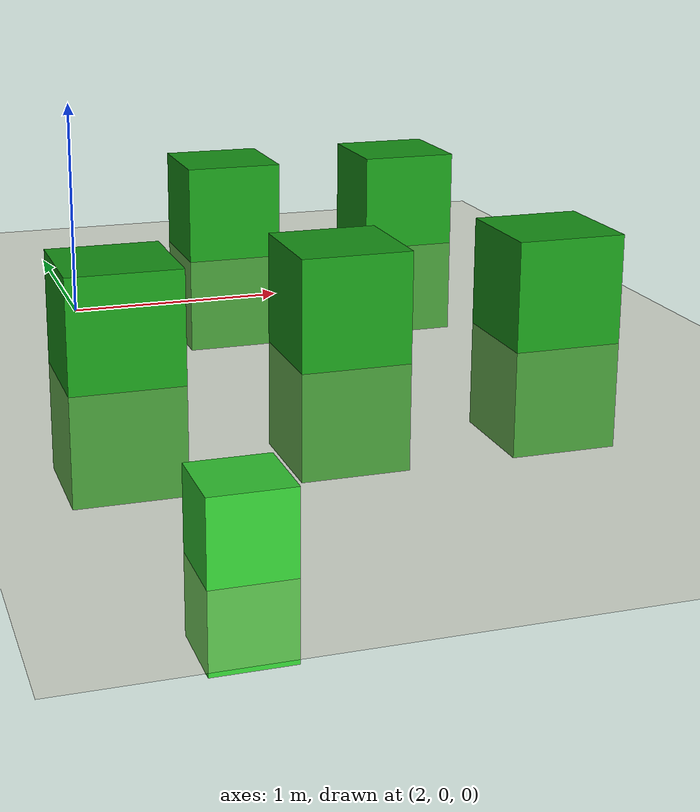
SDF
<?xml version="1.0" ?>
<sdf version="1.7">
  <world name="agribot_farm">

    <physics name="1ms" type="ignored">
      <max_step_size>0.001</max_step_size>
      <real_time_factor>1</real_time_factor>
      <real_time_update_rate>1000</real_time_update_rate>
    </physics>

    <plugin name='gz::sim::systems::Physics' filename='ignition-gazebo-physics-system'/>
    <plugin name='gz::sim::systems::UserCommands' filename='ignition-gazebo-user-commands-system'/>
    <plugin name='gz::sim::systems::SceneBroadcaster' filename='ignition-gazebo-scene-broadcaster-system'/>
    <plugin name='gz::sim::systems::Contact' filename='ignition-gazebo-contact-system'/>
    <plugin name='gz::sim::systems::Sensors' filename='ignition-gazebo-sensors-system'>
      <render_engine>ogre</render_engine>
    </plugin>

    <gravity>0 0 -9.8</gravity>
    <magnetic_field>6e-06 2.3e-05 -4.2e-05</magnetic_field>
    <atmosphere type='adiabatic'/>

    <scene>
      <ambient>0.4 0.4 0.4 1</ambient>
      <background>0.7 0.7 0.7 1</background>
      <shadows>true</shadows>
    </scene>

    <light type="directional" name="sun">
      <cast_shadows>true</cast_shadows>
      <pose>0 0 10 0 0 0</pose>
      <diffuse>0.8 0.8 0.8 1</diffuse>
      <specular>0.2 0.2 0.2 1</specular>
      <direction>-0.5 0.1 -0.9</direction>
    </light>

    <!-- GROUND PLANE -->
    <model name="ground_plane">
      <static>true</static>
      <link name="link">
        <collision name="collision">
          <geometry>
            <plane>
              <normal>0 0 1</normal>
              <size>100 100</size>
            </plane>
          </geometry>
          <surface>
            <friction>
              <ode/>
            </friction>
            <bounce/>
            <contact/>
          </surface>
        </collision>
        <visual name="visual">
          <geometry>
            <plane>
              <normal>0 0 1</normal>
              <size>15 15</size>
            </plane>
          </geometry>
          <material>
            <ambient>0.8 0.7 0.6 1</ambient>
            <diffuse>0.8 0.7 0.6 1</diffuse>
            <specular>0.1 0.1 0.1 1</specular>
            <pbr>
              <metal>
                <albedo_map>model://sand_ground/textures/sand.jpeg</albedo_map>
                <roughness>0.8</roughness>
                <metalness>0.0</metalness>
              </metal>
            </pbr>
          </material>
        </visual>
        <pose>0 0 0 0 0 0</pose>
        <inertial>
          <pose>0 0 0 0 0 0</pose>
          <mass>1</mass>
          <inertia>
            <ixx>1</ixx>
            <ixy>0</ixy>
            <ixz>0</ixz>
            <iyy>1</iyy>
            <iyz>0</iyz>
            <izz>1</izz>
          </inertia>
        </inertial>
      </link>
    </model>

    <model name="plant_0_0">
      <static>true</static>
      <link name="link">
        <pose>2.0 -3.0 0 0 0 0</pose>
        <visual name="visual">
          <geometry>
            <box>
              <size>0.3 0.3 0.6</size>
            </box>
          </geometry>
          <material>
            <ambient>0.2 0.8 0.2 1</ambient>
            <diffuse>0.2 0.8 0.2 1</diffuse>
          </material>
        </visual>
        <collision name="collision">
          <geometry>
            <box>
              <size>0.3 0.3 0.6</size>
            </box>
          </geometry>
        </collision>
      </link>
    </model>

    <model name="plant_1_0">
      <static>true</static>
      <link name="link">
        <pose>2.0 -1.0 0 0 0 0</pose>
        <visual name="visual">
          <geometry>
            <box>
              <size>0.5 0.5 1.0</size>
            </box>
          </geometry>
          <material>
            <ambient>0.1 0.6 0.1 1</ambient>
            <diffuse>0.1 0.6 0.1 1</diffuse>
          </material>
        </visual>
        <collision name="collision">
          <geometry>
            <box>
              <size>0.5 0.5 1.0</size>
            </box>
          </geometry>
        </collision>
      </link>
    </model>

    <model name="plant_1_1">
      <static>true</static>
      <link name="link">
        <pose>3.0 -1.0 0 0 0 0</pose>
        <visual name="visual">
          <geometry>
            <box>
              <size>0.5 0.5 1.0</size>
            </box>
          </geometry>
          <material>
            <ambient>0.1 0.6 0.1 1</ambient>
            <diffuse>0.1 0.6 0.1 1</diffuse>
          </material>
        </visual>
        <collision name="collision">
          <geometry>
            <box>
              <size>0.5 0.5 1.0</size>
            </box>
          </geometry>
        </collision>
      </link>
    </model>

    <model name="plant_1_2">
      <static>true</static>
      <link name="link">
        <pose>4.0 -1.0 0 0 0 0</pose>
        <visual name="visual">
          <geometry>
            <box>
              <size>0.5 0.5 1.0</size>
            </box>
          </geometry>
          <material>
            <ambient>0.1 0.6 0.1 1</ambient>
            <diffuse>0.1 0.6 0.1 1</diffuse>
          </material>
        </visual>
        <collision name="collision">
          <geometry>
            <box>
              <size>0.5 0.5 1.0</size>
            </box>
          </geometry>
        </collision>
      </link>
    </model>

    <model name="plant_2_1">
      <static>true</static>
      <link name="link">
        <pose>3.0 1.0 0 0 0 0</pose>
        <visual name="visual">
          <geometry>
            <box>
              <size>0.5 0.5 1.0</size>
            </box>
          </geometry>
          <material>
            <ambient>0.1 0.6 0.1 1</ambient>
            <diffuse>0.1 0.6 0.1 1</diffuse>
          </material>
        </visual>
        <collision name="collision">
          <geometry>
            <box>
              <size>0.5 0.5 1.0</size>
            </box>
          </geometry>
        </collision>
      </link>
    </model>

    <model name="plant_2_2">
      <static>true</static>
      <link name="link">
        <pose>4.0 1.0 0 0 0 0</pose>
        <visual name="visual">
          <geometry>
            <box>
              <size>0.5 0.5 1.0</size>
            </box>
          </geometry>
          <material>
            <ambient>0.1 0.6 0.1 1</ambient>
            <diffuse>0.1 0.6 0.1 1</diffuse>
          </material>
        </visual>
        <collision name="collision">
          <geometry>
            <box>
              <size>0.5 0.5 1.0</size>
            </box>
          </geometry>
        </collision>
      </link>
    </model>

  </world>
</sdf>
